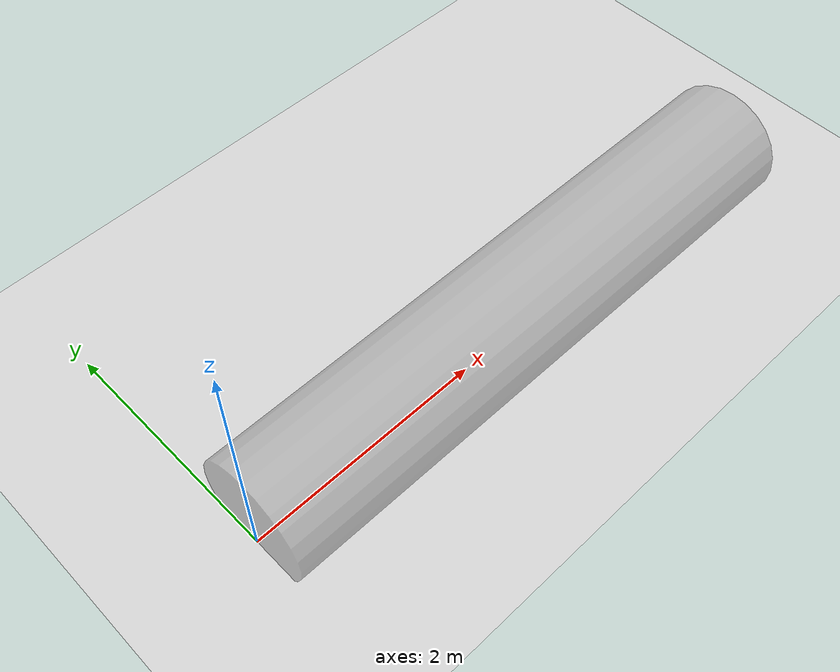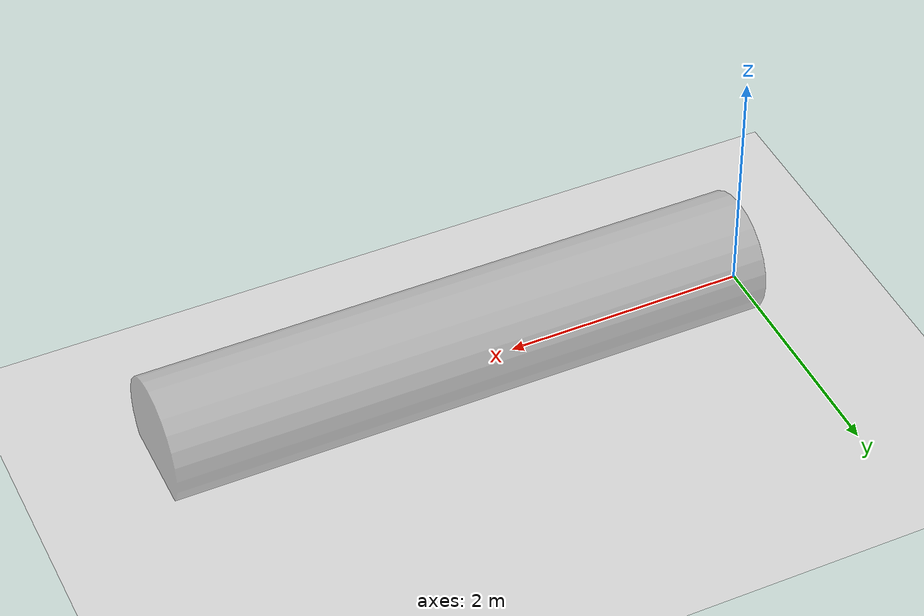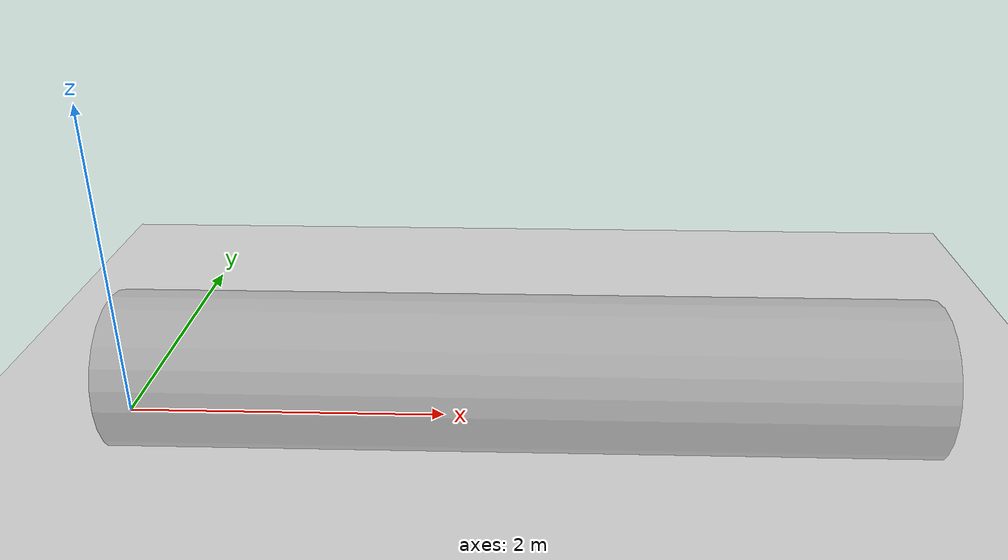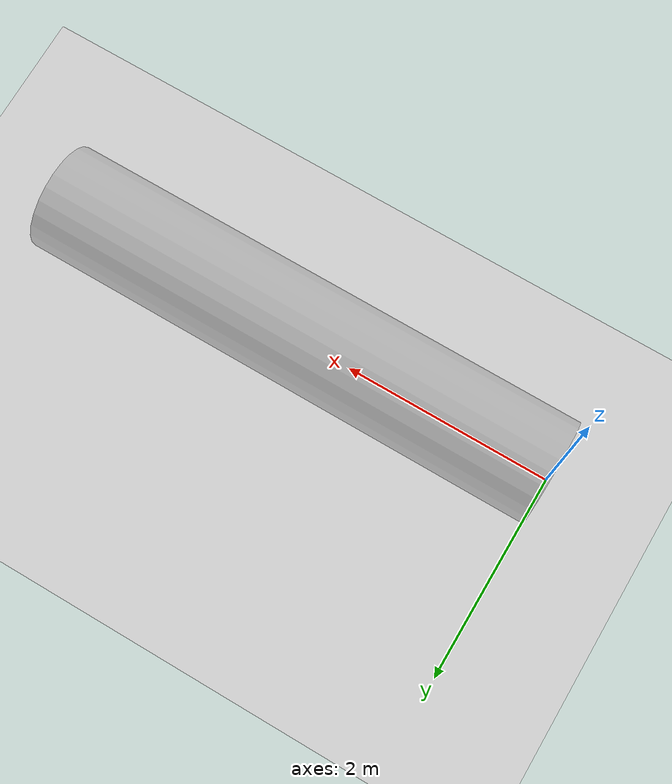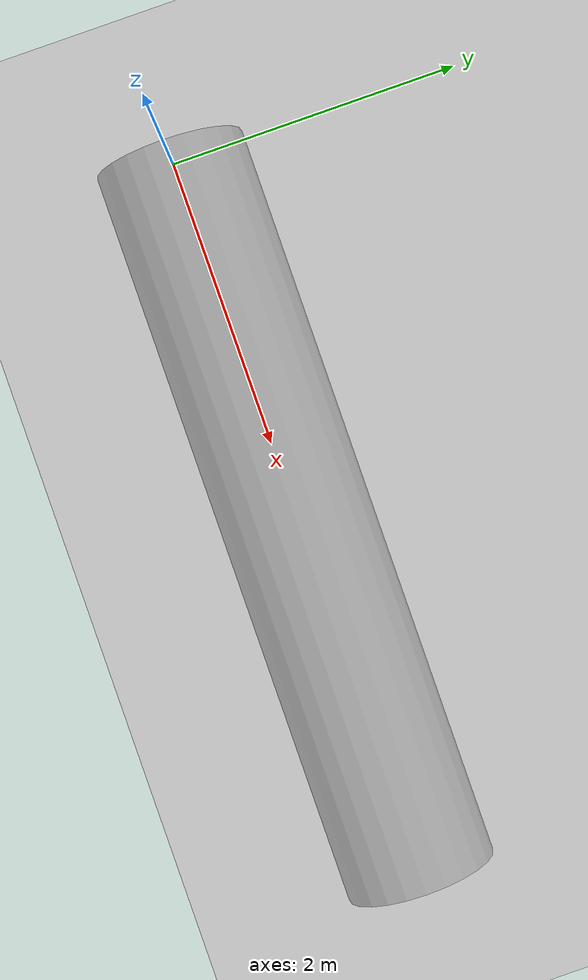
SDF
<?xml version="1.0"?>
<sdf version="1.6">
  <world name="pipe_world">

    <!-- Physics -->
    <physics type="ode">
      <real_time_update_rate>1000.0</real_time_update_rate>
      <max_step_size>0.001</max_step_size>
    </physics>

    <!-- Lighting -->
    <light name="sun" type="directional">
      <cast_shadows>true</cast_shadows>
      <pose>0 0 10 0 0 0</pose>
      <diffuse>0.8 0.8 0.8 1</diffuse>
      <specular>0.2 0.2 0.2 1</specular>
      <attenuation>
        <range>1000</range>
        <constant>0.9</constant>
        <linear>0.01</linear>
        <quadratic>0.001</quadratic>
      </attenuation>
      <direction>-0.5 0.1 -0.9</direction>
    </light>

    <!-- Ambient light -->
    <scene>
      <ambient>0.4 0.4 0.4 1</ambient>
      <background>0.7 0.7 0.7 1</background>
      <shadows>true</shadows>
    </scene>

    <!-- Horizontal Pipe (rotated 90 degrees) -->
    <model name="pipe">
      <static>true</static>
      <pose>2.5 0 0.3 0 1.5708 0</pose>
      <link name="pipe_link">
        <visual name="visual">
          <geometry>
            <cylinder>
              <radius>0.5</radius>
              <length>5.0</length>
            </cylinder>
          </geometry>
          <material>
            <ambient>0.5 0.5 0.5 1</ambient>
            <diffuse>0.6 0.6 0.6 1</diffuse>
            <specular>0.1 0.1 0.1 1</specular>
          </material>
          <transparency>0.5</transparency>
        </visual>
        <collision name="collision">
          <geometry>
            <cylinder>
              <radius>0.5</radius>
              <length>5.0</length>
            </cylinder>
          </geometry>
        </collision>
      </link>
    </model>

    <!-- Ground Plane -->
    <model name="ground_plane">
      <static>true</static>
      <link name="link">
        <collision name="collision">
          <geometry>
            <plane>
              <normal>0 0 1</normal>
              <size>100 100</size>
            </plane>
          </geometry>
        </collision>
        <visual name="visual">
          <geometry>
            <plane>
              <normal>0 0 1</normal>
              <size>100 100</size>
            </plane>
          </geometry>
          <material>
            <ambient>0.8 0.8 0.8 1</ambient>
            <diffuse>0.8 0.8 0.8 1</diffuse>
          </material>
        </visual>
      </link>
    </model>

  </world>
</sdf>
